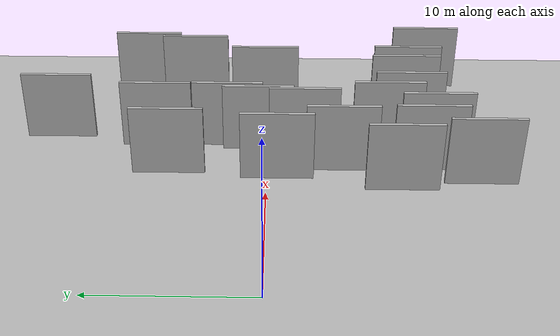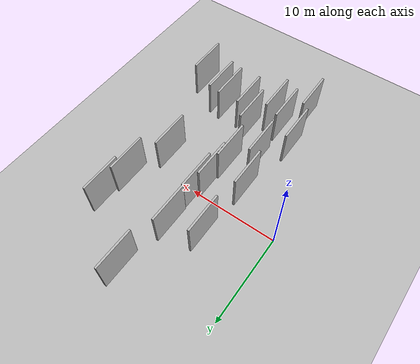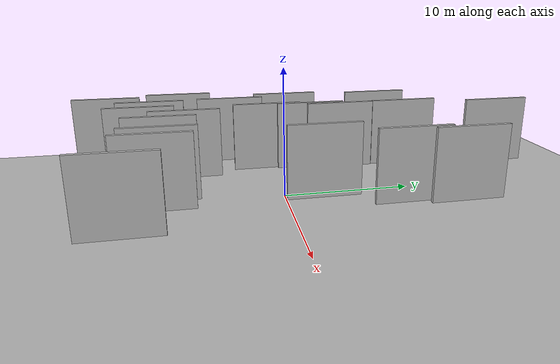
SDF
<?xml version="1.0" encoding="utf-8"?>

<sdf version="1.6">

   <world name="default">

      <gui fullscreen="0">

         <camera name="user_camera">

            <pose>-15 0 4.57585 0 0 0</pose>

            <view_controller>orbit</view_controller>

         </camera>

      </gui>

      <scene>

         <sky>

           <clouds>

             <speed>12</speed>

           </clouds>

         </sky>

         <ambient>0.4 0.4 0.4 1</ambient>

         <background>0.7 0.7 0.7 1</background>

         <shadows>1</shadows>

      </scene>

      <gravity>0 0 -9.8066</gravity>

      <magnetic_field>6e-06 2.3e-05 -4.2e-05</magnetic_field>

      <physics default="0" name="default_physics" type="ode">

         <ode>

            <solver>

               <type>quick</type>

               <iters>10</iters>

               <sor>1.0</sor>

               <use_dynamic_moi_rescaling>0</use_dynamic_moi_rescaling>

            </solver>

            <constraints>

               <cfm>0</cfm>

               <erp>0.2</erp>

               <contact_max_correcting_vel>100</contact_max_correcting_vel>

               <contact_surface_layer>0.001</contact_surface_layer>

            </constraints>

         </ode>

         <max_step_size>0.004</max_step_size>

         <real_time_factor>1</real_time_factor>

         <real_time_update_rate>250</real_time_update_rate>

      </physics>

      <light name="sun" type="directional">

         <cast_shadows>1</cast_shadows>

         <pose>0 0 10 0 0 0</pose>

         <diffuse>0.8 0.8 0.8 1</diffuse>

         <specular>0.2 0.2 0.2 1</specular>

         <attenuation>

            <range>1000</range>

            <constant>0.9</constant>

            <linear>0.01</linear>

            <quadratic>0.001</quadratic>

         </attenuation>

         <direction>-0.5 0.1 -0.9</direction>

      </light>

      <include>

         <name>ground_plane_1</name>

         <uri>model://HANNAS_ground_plane</uri>

         <pose>0 0 0  0 0 0</pose>

      </include>

      <include>

         <name>ground_plane_2</name>

         <uri>model://HANNAS_ground_plane</uri>

         <pose>100 0 0  0 0 0</pose>

      </include>

      <model name="HANNAS_wall_1">

         <static>1</static>

         <pose frame="">7.6312 6.1626 5.0 0.000000 0.000000 1.570796</pose>

         <link name="link">

            <pose frame="">0 0 2.00 0 0 0</pose>

            <collision name="collision">

               <geometry>

                  <box>

                     <size>4.00 0.2 4.00</size>

                  </box>

               </geometry>

               <max_contacts>10</max_contacts>

               <surface>

                  <contact>

                     <ode/>

                  </contact>

                  <bounce/>

                  <friction>

                     <torsional>

                        <ode/>

                     </torsional>

                     <ode/>

                  </friction>

               </surface>

            </collision>

            <visual name="visual">

               <cast_shadows>0</cast_shadows>

               <geometry>

                  <box>

                     <size>4.00 0.2 4.00</size>

                  </box>

               </geometry>

               <material>

                  <script>

                     <uri>model://HANNAS_wall/materials/scripts</uri>

                     <uri>model://HANNAS_wall/materials/textures</uri>

                     <name>vrc/HANNAS_wall</name>

                  </script>

               </material>

            </visual>

            <self_collide>0</self_collide>

            <enable_wind>0</enable_wind>

            <kinematic>0</kinematic>

         </link>

      </model>

      <model name="HANNAS_wall_2">

         <static>1</static>

         <pose frame="">14.2399 7.2748 5.0 0.000000 0.000000 1.570796</pose>

         <link name="link">

            <pose frame="">0 0 2.00 0 0 0</pose>

            <collision name="collision">

               <geometry>

                  <box>

                     <size>4.00 0.2 4.00</size>

                  </box>

               </geometry>

               <max_contacts>10</max_contacts>

               <surface>

                  <contact>

                     <ode/>

                  </contact>

                  <bounce/>

                  <friction>

                     <torsional>

                        <ode/>

                     </torsional>

                     <ode/>

                  </friction>

               </surface>

            </collision>

            <visual name="visual">

               <cast_shadows>0</cast_shadows>

               <geometry>

                  <box>

                     <size>4.00 0.2 4.00</size>

                  </box>

               </geometry>

               <material>

                  <script>

                     <uri>model://HANNAS_wall/materials/scripts</uri>

                     <uri>model://HANNAS_wall/materials/textures</uri>

                     <name>vrc/HANNAS_wall</name>

                  </script>

               </material>

            </visual>

            <self_collide>0</self_collide>

            <enable_wind>0</enable_wind>

            <kinematic>0</kinematic>

         </link>

      </model>

      <model name="HANNAS_wall_3">

         <static>1</static>

         <pose frame="">15.2729 -9.9006 5.0 0.000000 0.000000 1.570796</pose>

         <link name="link">

            <pose frame="">0 0 2.00 0 0 0</pose>

            <collision name="collision">

               <geometry>

                  <box>

                     <size>4.00 0.2 4.00</size>

                  </box>

               </geometry>

               <max_contacts>10</max_contacts>

               <surface>

                  <contact>

                     <ode/>

                  </contact>

                  <bounce/>

                  <friction>

                     <torsional>

                        <ode/>

                     </torsional>

                     <ode/>

                  </friction>

               </surface>

            </collision>

            <visual name="visual">

               <cast_shadows>0</cast_shadows>

               <geometry>

                  <box>

                     <size>4.00 0.2 4.00</size>

                  </box>

               </geometry>

               <material>

                  <script>

                     <uri>model://HANNAS_wall/materials/scripts</uri>

                     <uri>model://HANNAS_wall/materials/textures</uri>

                     <name>vrc/HANNAS_wall</name>

                  </script>

               </material>

            </visual>

            <self_collide>0</self_collide>

            <enable_wind>0</enable_wind>

            <kinematic>0</kinematic>

         </link>

      </model>

      <model name="HANNAS_wall_4">

         <static>1</static>

         <pose frame="">12.3508 0.0581 5.0 0.000000 0.000000 1.570796</pose>

         <link name="link">

            <pose frame="">0 0 2.00 0 0 0</pose>

            <collision name="collision">

               <geometry>

                  <box>

                     <size>4.00 0.2 4.00</size>

                  </box>

               </geometry>

               <max_contacts>10</max_contacts>

               <surface>

                  <contact>

                     <ode/>

                  </contact>

                  <bounce/>

                  <friction>

                     <torsional>

                        <ode/>

                     </torsional>

                     <ode/>

                  </friction>

               </surface>

            </collision>

            <visual name="visual">

               <cast_shadows>0</cast_shadows>

               <geometry>

                  <box>

                     <size>4.00 0.2 4.00</size>

                  </box>

               </geometry>

               <material>

                  <script>

                     <uri>model://HANNAS_wall/materials/scripts</uri>

                     <uri>model://HANNAS_wall/materials/textures</uri>

                     <name>vrc/HANNAS_wall</name>

                  </script>

               </material>

            </visual>

            <self_collide>0</self_collide>

            <enable_wind>0</enable_wind>

            <kinematic>0</kinematic>

         </link>

      </model>

      <model name="HANNAS_wall_5">

         <static>1</static>

         <pose frame="">7.6979 2.1255 5.0 0.000000 0.000000 1.570796</pose>

         <link name="link">

            <pose frame="">0 0 2.00 0 0 0</pose>

            <collision name="collision">

               <geometry>

                  <box>

                     <size>4.00 0.2 4.00</size>

                  </box>

               </geometry>

               <max_contacts>10</max_contacts>

               <surface>

                  <contact>

                     <ode/>

                  </contact>

                  <bounce/>

                  <friction>

                     <torsional>

                        <ode/>

                     </torsional>

                     <ode/>

                  </friction>

               </surface>

            </collision>

            <visual name="visual">

               <cast_shadows>0</cast_shadows>

               <geometry>

                  <box>

                     <size>4.00 0.2 4.00</size>

                  </box>

               </geometry>

               <material>

                  <script>

                     <uri>model://HANNAS_wall/materials/scripts</uri>

                     <uri>model://HANNAS_wall/materials/textures</uri>

                     <name>vrc/HANNAS_wall</name>

                  </script>

               </material>

            </visual>

            <self_collide>0</self_collide>

            <enable_wind>0</enable_wind>

            <kinematic>0</kinematic>

         </link>

      </model>

      <model name="HANNAS_wall_6">

         <static>1</static>

         <pose frame="">7.9271 -7.0388 5.0 0.000000 0.000000 1.570796</pose>

         <link name="link">

            <pose frame="">0 0 2.00 0 0 0</pose>

            <collision name="collision">

               <geometry>

                  <box>

                     <size>4.00 0.2 4.00</size>

                  </box>

               </geometry>

               <max_contacts>10</max_contacts>

               <surface>

                  <contact>

                     <ode/>

                  </contact>

                  <bounce/>

                  <friction>

                     <torsional>

                        <ode/>

                     </torsional>

                     <ode/>

                  </friction>

               </surface>

            </collision>

            <visual name="visual">

               <cast_shadows>0</cast_shadows>

               <geometry>

                  <box>

                     <size>4.00 0.2 4.00</size>

                  </box>

               </geometry>

               <material>

                  <script>

                     <uri>model://HANNAS_wall/materials/scripts</uri>

                     <uri>model://HANNAS_wall/materials/textures</uri>

                     <name>vrc/HANNAS_wall</name>

                  </script>

               </material>

            </visual>

            <self_collide>0</self_collide>

            <enable_wind>0</enable_wind>

            <kinematic>0</kinematic>

         </link>

      </model>

      <model name="HANNAS_wall_7">

         <static>1</static>

         <pose frame="">6.6702 -9.6324 5.0 0.000000 0.000000 1.570796</pose>

         <link name="link">

            <pose frame="">0 0 2.00 0 0 0</pose>

            <collision name="collision">

               <geometry>

                  <box>

                     <size>4.00 0.2 4.00</size>

                  </box>

               </geometry>

               <max_contacts>10</max_contacts>

               <surface>

                  <contact>

                     <ode/>

                  </contact>

                  <bounce/>

                  <friction>

                     <torsional>

                        <ode/>

                     </torsional>

                     <ode/>

                  </friction>

               </surface>

            </collision>

            <visual name="visual">

               <cast_shadows>0</cast_shadows>

               <geometry>

                  <box>

                     <size>4.00 0.2 4.00</size>

                  </box>

               </geometry>

               <material>

                  <script>

                     <uri>model://HANNAS_wall/materials/scripts</uri>

                     <uri>model://HANNAS_wall/materials/textures</uri>

                     <name>vrc/HANNAS_wall</name>

                  </script>

               </material>

            </visual>

            <self_collide>0</self_collide>

            <enable_wind>0</enable_wind>

            <kinematic>0</kinematic>

         </link>

      </model>

      <model name="HANNAS_wall_8">

         <static>1</static>

         <pose frame="">5.1009 -4.2955 5.0 0.000000 0.000000 1.570796</pose>

         <link name="link">

            <pose frame="">0 0 2.00 0 0 0</pose>

            <collision name="collision">

               <geometry>

                  <box>

                     <size>4.00 0.2 4.00</size>

                  </box>

               </geometry>

               <max_contacts>10</max_contacts>

               <surface>

                  <contact>

                     <ode/>

                  </contact>

                  <bounce/>

                  <friction>

                     <torsional>

                        <ode/>

                     </torsional>

                     <ode/>

                  </friction>

               </surface>

            </collision>

            <visual name="visual">

               <cast_shadows>0</cast_shadows>

               <geometry>

                  <box>

                     <size>4.00 0.2 4.00</size>

                  </box>

               </geometry>

               <material>

                  <script>

                     <uri>model://HANNAS_wall/materials/scripts</uri>

                     <uri>model://HANNAS_wall/materials/textures</uri>

                     <name>vrc/HANNAS_wall</name>

                  </script>

               </material>

            </visual>

            <self_collide>0</self_collide>

            <enable_wind>0</enable_wind>

            <kinematic>0</kinematic>

         </link>

      </model>

      <model name="HANNAS_wall_9">

         <static>1</static>

         <pose frame="">11.3215 -8.3103 5.0 0.000000 0.000000 1.570796</pose>

         <link name="link">

            <pose frame="">0 0 2.00 0 0 0</pose>

            <collision name="collision">

               <geometry>

                  <box>

                     <size>4.00 0.2 4.00</size>

                  </box>

               </geometry>

               <max_contacts>10</max_contacts>

               <surface>

                  <contact>

                     <ode/>

                  </contact>

                  <bounce/>

                  <friction>

                     <torsional>

                        <ode/>

                     </torsional>

                     <ode/>

                  </friction>

               </surface>

            </collision>

            <visual name="visual">

               <cast_shadows>0</cast_shadows>

               <geometry>

                  <box>

                     <size>4.00 0.2 4.00</size>

                  </box>

               </geometry>

               <material>

                  <script>

                     <uri>model://HANNAS_wall/materials/scripts</uri>

                     <uri>model://HANNAS_wall/materials/textures</uri>

                     <name>vrc/HANNAS_wall</name>

                  </script>

               </material>

            </visual>

            <self_collide>0</self_collide>

            <enable_wind>0</enable_wind>

            <kinematic>0</kinematic>

         </link>

      </model>

      <model name="HANNAS_wall_10">

         <static>1</static>

         <pose frame="">3.8768 -11.8132 5.0 0.000000 0.000000 1.570796</pose>

         <link name="link">

            <pose frame="">0 0 2.00 0 0 0</pose>

            <collision name="collision">

               <geometry>

                  <box>

                     <size>4.00 0.2 4.00</size>

                  </box>

               </geometry>

               <max_contacts>10</max_contacts>

               <surface>

                  <contact>

                     <ode/>

                  </contact>

                  <bounce/>

                  <friction>

                     <torsional>

                        <ode/>

                     </torsional>

                     <ode/>

                  </friction>

               </surface>

            </collision>

            <visual name="visual">

               <cast_shadows>0</cast_shadows>

               <geometry>

                  <box>

                     <size>4.00 0.2 4.00</size>

                  </box>

               </geometry>

               <material>

                  <script>

                     <uri>model://HANNAS_wall/materials/scripts</uri>

                     <uri>model://HANNAS_wall/materials/textures</uri>

                     <name>vrc/HANNAS_wall</name>

                  </script>

               </material>

            </visual>

            <self_collide>0</self_collide>

            <enable_wind>0</enable_wind>

            <kinematic>0</kinematic>

         </link>

      </model>

      <model name="HANNAS_wall_11">

         <static>1</static>

         <pose frame="">13.8396 4.3691 5.0 0.000000 0.000000 1.570796</pose>

         <link name="link">

            <pose frame="">0 0 2.00 0 0 0</pose>

            <collision name="collision">

               <geometry>

                  <box>

                     <size>4.00 0.2 4.00</size>

                  </box>

               </geometry>

               <max_contacts>10</max_contacts>

               <surface>

                  <contact>

                     <ode/>

                  </contact>

                  <bounce/>

                  <friction>

                     <torsional>

                        <ode/>

                     </torsional>

                     <ode/>

                  </friction>

               </surface>

            </collision>

            <visual name="visual">

               <cast_shadows>0</cast_shadows>

               <geometry>

                  <box>

                     <size>4.00 0.2 4.00</size>

                  </box>

               </geometry>

               <material>

                  <script>

                     <uri>model://HANNAS_wall/materials/scripts</uri>

                     <uri>model://HANNAS_wall/materials/textures</uri>

                     <name>vrc/HANNAS_wall</name>

                  </script>

               </material>

            </visual>

            <self_collide>0</self_collide>

            <enable_wind>0</enable_wind>

            <kinematic>0</kinematic>

         </link>

      </model>

      <model name="HANNAS_wall_12">

         <static>1</static>

         <pose frame="">4.6870 5.2621 5.0 0.000000 0.000000 1.570796</pose>

         <link name="link">

            <pose frame="">0 0 2.00 0 0 0</pose>

            <collision name="collision">

               <geometry>

                  <box>

                     <size>4.00 0.2 4.00</size>

                  </box>

               </geometry>

               <max_contacts>10</max_contacts>

               <surface>

                  <contact>

                     <ode/>

                  </contact>

                  <bounce/>

                  <friction>

                     <torsional>

                        <ode/>

                     </torsional>

                     <ode/>

                  </friction>

               </surface>

            </collision>

            <visual name="visual">

               <cast_shadows>0</cast_shadows>

               <geometry>

                  <box>

                     <size>4.00 0.2 4.00</size>

                  </box>

               </geometry>

               <material>

                  <script>

                     <uri>model://HANNAS_wall/materials/scripts</uri>

                     <uri>model://HANNAS_wall/materials/textures</uri>

                     <name>vrc/HANNAS_wall</name>

                  </script>

               </material>

            </visual>

            <self_collide>0</self_collide>

            <enable_wind>0</enable_wind>

            <kinematic>0</kinematic>

         </link>

      </model>

      <model name="HANNAS_wall_13">

         <static>1</static>

         <pose frame="">5.2660 -9.1162 5.0 0.000000 0.000000 1.570796</pose>

         <link name="link">

            <pose frame="">0 0 2.00 0 0 0</pose>

            <collision name="collision">

               <geometry>

                  <box>

                     <size>4.00 0.2 4.00</size>

                  </box>

               </geometry>

               <max_contacts>10</max_contacts>

               <surface>

                  <contact>

                     <ode/>

                  </contact>

                  <bounce/>

                  <friction>

                     <torsional>

                        <ode/>

                     </torsional>

                     <ode/>

                  </friction>

               </surface>

            </collision>

            <visual name="visual">

               <cast_shadows>0</cast_shadows>

               <geometry>

                  <box>

                     <size>4.00 0.2 4.00</size>

                  </box>

               </geometry>

               <material>

                  <script>

                     <uri>model://HANNAS_wall/materials/scripts</uri>

                     <uri>model://HANNAS_wall/materials/textures</uri>

                     <name>vrc/HANNAS_wall</name>

                  </script>

               </material>

            </visual>

            <self_collide>0</self_collide>

            <enable_wind>0</enable_wind>

            <kinematic>0</kinematic>

         </link>

      </model>

      <model name="HANNAS_wall_14">

         <static>1</static>

         <pose frame="">12.5361 -8.5242 5.0 0.000000 0.000000 1.570796</pose>

         <link name="link">

            <pose frame="">0 0 2.00 0 0 0</pose>

            <collision name="collision">

               <geometry>

                  <box>

                     <size>4.00 0.2 4.00</size>

                  </box>

               </geometry>

               <max_contacts>10</max_contacts>

               <surface>

                  <contact>

                     <ode/>

                  </contact>

                  <bounce/>

                  <friction>

                     <torsional>

                        <ode/>

                     </torsional>

                     <ode/>

                  </friction>

               </surface>

            </collision>

            <visual name="visual">

               <cast_shadows>0</cast_shadows>

               <geometry>

                  <box>

                     <size>4.00 0.2 4.00</size>

                  </box>

               </geometry>

               <material>

                  <script>

                     <uri>model://HANNAS_wall/materials/scripts</uri>

                     <uri>model://HANNAS_wall/materials/textures</uri>

                     <name>vrc/HANNAS_wall</name>

                  </script>

               </material>

            </visual>

            <self_collide>0</self_collide>

            <enable_wind>0</enable_wind>

            <kinematic>0</kinematic>

         </link>

      </model>

      <model name="HANNAS_wall_15">

         <static>1</static>

         <pose frame="">3.2069 -7.4612 5.0 0.000000 0.000000 1.570796</pose>

         <link name="link">

            <pose frame="">0 0 2.00 0 0 0</pose>

            <collision name="collision">

               <geometry>

                  <box>

                     <size>4.00 0.2 4.00</size>

                  </box>

               </geometry>

               <max_contacts>10</max_contacts>

               <surface>

                  <contact>

                     <ode/>

                  </contact>

                  <bounce/>

                  <friction>

                     <torsional>

                        <ode/>

                     </torsional>

                     <ode/>

                  </friction>

               </surface>

            </collision>

            <visual name="visual">

               <cast_shadows>0</cast_shadows>

               <geometry>

                  <box>

                     <size>4.00 0.2 4.00</size>

                  </box>

               </geometry>

               <material>

                  <script>

                     <uri>model://HANNAS_wall/materials/scripts</uri>

                     <uri>model://HANNAS_wall/materials/textures</uri>

                     <name>vrc/HANNAS_wall</name>

                  </script>

               </material>

            </visual>

            <self_collide>0</self_collide>

            <enable_wind>0</enable_wind>

            <kinematic>0</kinematic>

         </link>

      </model>

      <model name="HANNAS_wall_16">

         <static>1</static>

         <pose frame="">7.3102 0.3777 5.0 0.000000 0.000000 1.570796</pose>

         <link name="link">

            <pose frame="">0 0 2.00 0 0 0</pose>

            <collision name="collision">

               <geometry>

                  <box>

                     <size>4.00 0.2 4.00</size>

                  </box>

               </geometry>

               <max_contacts>10</max_contacts>

               <surface>

                  <contact>

                     <ode/>

                  </contact>

                  <bounce/>

                  <friction>

                     <torsional>

                        <ode/>

                     </torsional>

                     <ode/>

                  </friction>

               </surface>

            </collision>

            <visual name="visual">

               <cast_shadows>0</cast_shadows>

               <geometry>

                  <box>

                     <size>4.00 0.2 4.00</size>

                  </box>

               </geometry>

               <material>

                  <script>

                     <uri>model://HANNAS_wall/materials/scripts</uri>

                     <uri>model://HANNAS_wall/materials/textures</uri>

                     <name>vrc/HANNAS_wall</name>

                  </script>

               </material>

            </visual>

            <self_collide>0</self_collide>

            <enable_wind>0</enable_wind>

            <kinematic>0</kinematic>

         </link>

      </model>

      <model name="HANNAS_wall_17">

         <static>1</static>

         <pose frame="">8.5092 11.8847 5.0 0.000000 0.000000 1.570796</pose>

         <link name="link">

            <pose frame="">0 0 2.00 0 0 0</pose>

            <collision name="collision">

               <geometry>

                  <box>

                     <size>4.00 0.2 4.00</size>

                  </box>

               </geometry>

               <max_contacts>10</max_contacts>

               <surface>

                  <contact>

                     <ode/>

                  </contact>

                  <bounce/>

                  <friction>

                     <torsional>

                        <ode/>

                     </torsional>

                     <ode/>

                  </friction>

               </surface>

            </collision>

            <visual name="visual">

               <cast_shadows>0</cast_shadows>

               <geometry>

                  <box>

                     <size>4.00 0.2 4.00</size>

                  </box>

               </geometry>

               <material>

                  <script>

                     <uri>model://HANNAS_wall/materials/scripts</uri>

                     <uri>model://HANNAS_wall/materials/textures</uri>

                     <name>vrc/HANNAS_wall</name>

                  </script>

               </material>

            </visual>

            <self_collide>0</self_collide>

            <enable_wind>0</enable_wind>

            <kinematic>0</kinematic>

         </link>

      </model>

      <model name="HANNAS_wall_18">

         <static>1</static>

         <pose frame="">9.1544 -8.3654 5.0 0.000000 0.000000 1.570796</pose>

         <link name="link">

            <pose frame="">0 0 2.00 0 0 0</pose>

            <collision name="collision">

               <geometry>

                  <box>

                     <size>4.00 0.2 4.00</size>

                  </box>

               </geometry>

               <max_contacts>10</max_contacts>

               <surface>

                  <contact>

                     <ode/>

                  </contact>

                  <bounce/>

                  <friction>

                     <torsional>

                        <ode/>

                     </torsional>

                     <ode/>

                  </friction>

               </surface>

            </collision>

            <visual name="visual">

               <cast_shadows>0</cast_shadows>

               <geometry>

                  <box>

                     <size>4.00 0.2 4.00</size>

                  </box>

               </geometry>

               <material>

                  <script>

                     <uri>model://HANNAS_wall/materials/scripts</uri>

                     <uri>model://HANNAS_wall/materials/textures</uri>

                     <name>vrc/HANNAS_wall</name>

                  </script>

               </material>

            </visual>

            <self_collide>0</self_collide>

            <enable_wind>0</enable_wind>

            <kinematic>0</kinematic>

         </link>

      </model>

      <model name="HANNAS_wall_19">

         <static>1</static>

         <pose frame="">4.2270 -0.7098 5.0 0.000000 0.000000 1.570796</pose>

         <link name="link">

            <pose frame="">0 0 2.00 0 0 0</pose>

            <collision name="collision">

               <geometry>

                  <box>

                     <size>4.00 0.2 4.00</size>

                  </box>

               </geometry>

               <max_contacts>10</max_contacts>

               <surface>

                  <contact>

                     <ode/>

                  </contact>

                  <bounce/>

                  <friction>

                     <torsional>

                        <ode/>

                     </torsional>

                     <ode/>

                  </friction>

               </surface>

            </collision>

            <visual name="visual">

               <cast_shadows>0</cast_shadows>

               <geometry>

                  <box>

                     <size>4.00 0.2 4.00</size>

                  </box>

               </geometry>

               <material>

                  <script>

                     <uri>model://HANNAS_wall/materials/scripts</uri>

                     <uri>model://HANNAS_wall/materials/textures</uri>

                     <name>vrc/HANNAS_wall</name>

                  </script>

               </material>

            </visual>

            <self_collide>0</self_collide>

            <enable_wind>0</enable_wind>

            <kinematic>0</kinematic>

         </link>

      </model>

      <model name="HANNAS_wall_20">

         <static>1</static>

         <pose frame="">7.0996 -2.2356 5.0 0.000000 0.000000 1.570796</pose>

         <link name="link">

            <pose frame="">0 0 2.00 0 0 0</pose>

            <collision name="collision">

               <geometry>

                  <box>

                     <size>4.00 0.2 4.00</size>

                  </box>

               </geometry>

               <max_contacts>10</max_contacts>

               <surface>

                  <contact>

                     <ode/>

                  </contact>

                  <bounce/>

                  <friction>

                     <torsional>

                        <ode/>

                     </torsional>

                     <ode/>

                  </friction>

               </surface>

            </collision>

            <visual name="visual">

               <cast_shadows>0</cast_shadows>

               <geometry>

                  <box>

                     <size>4.00 0.2 4.00</size>

                  </box>

               </geometry>

               <material>

                  <script>

                     <uri>model://HANNAS_wall/materials/scripts</uri>

                     <uri>model://HANNAS_wall/materials/textures</uri>

                     <name>vrc/HANNAS_wall</name>

                  </script>

               </material>

            </visual>

            <self_collide>0</self_collide>

            <enable_wind>0</enable_wind>

            <kinematic>0</kinematic>

         </link>

      </model>

   </world>

</sdf>

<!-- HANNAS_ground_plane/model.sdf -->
<sdf version="1.4">
<model name="HANNAS_ground_plane">
  <static>true</static>
    <link name="link">
      <collision name="collision">
        <geometry>
          <plane>
            <normal>0 0 1</normal>
            <size>1000 1000</size>
          </plane>
        </geometry>
        <surface>
          <friction>
            <ode>
              <mu>100</mu>
              <mu2>50</mu2>
            </ode>
          </friction>
        </surface>
      </collision>
      <visual name="visual">
        <cast_shadows>false</cast_shadows>
        <geometry>
          <plane>
            <normal>0 0 1</normal>
            <size>1000 1000</size>
          </plane>
        </geometry>
        <material>
          <script>
            <uri>model://HANNAS_ground_plane/materials/scripts/HANNAS_ground_plane.material</uri>
	    <uri>model://HANNAS_ground_plane/materials/textures</uri>
            <name>HANNASGroundPlane/Image</name>
          </script>
        </material>
      </visual>
    </link>
  </model>
</sdf>
